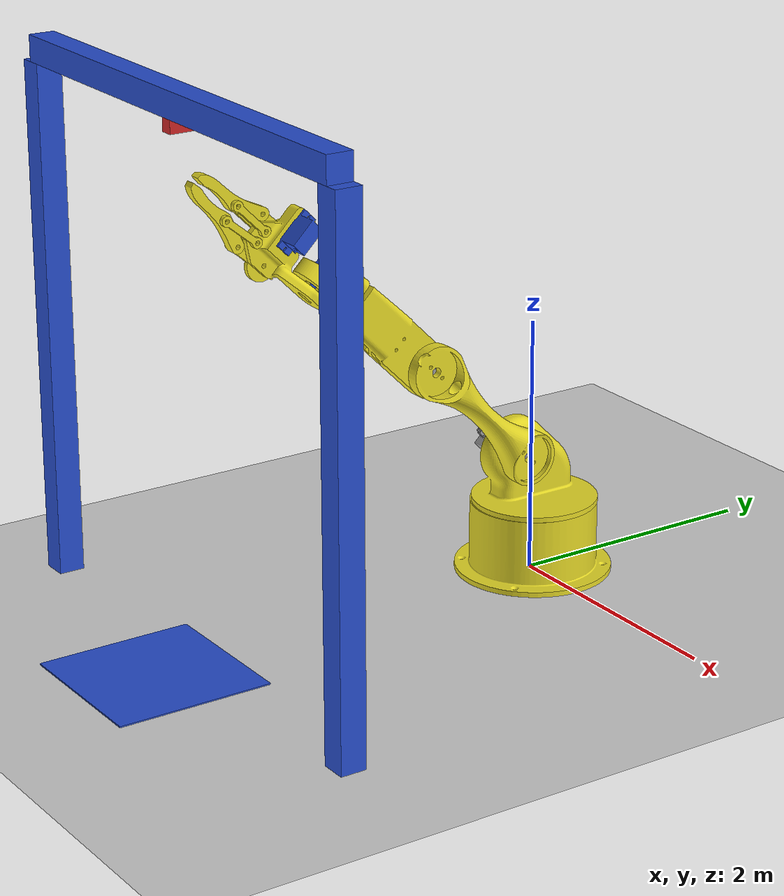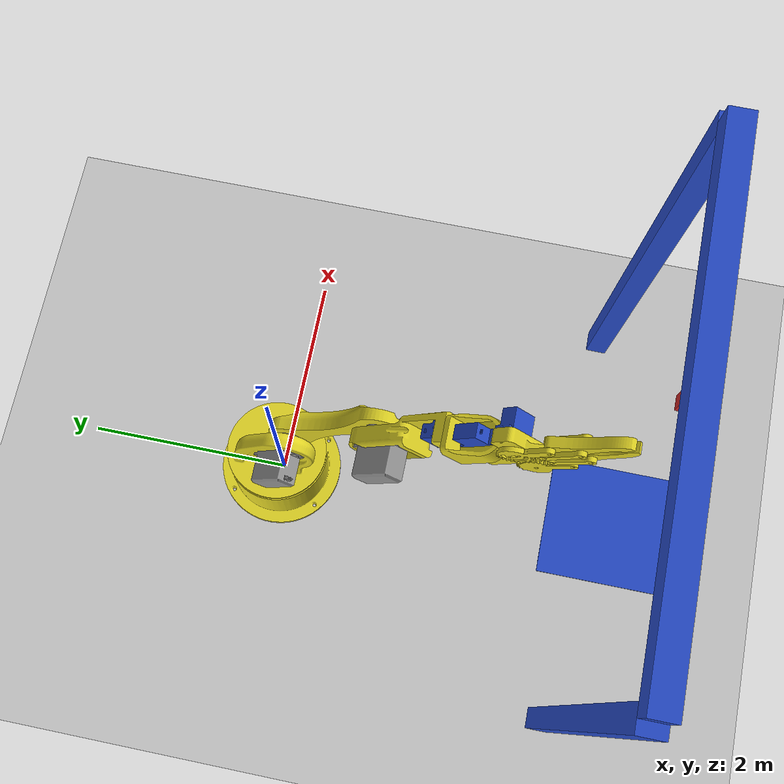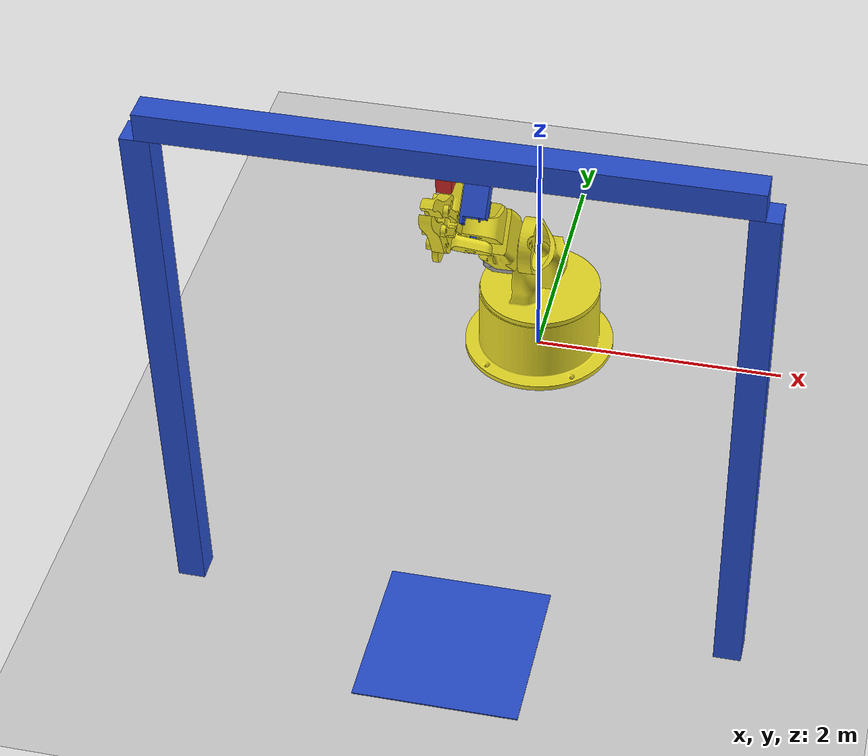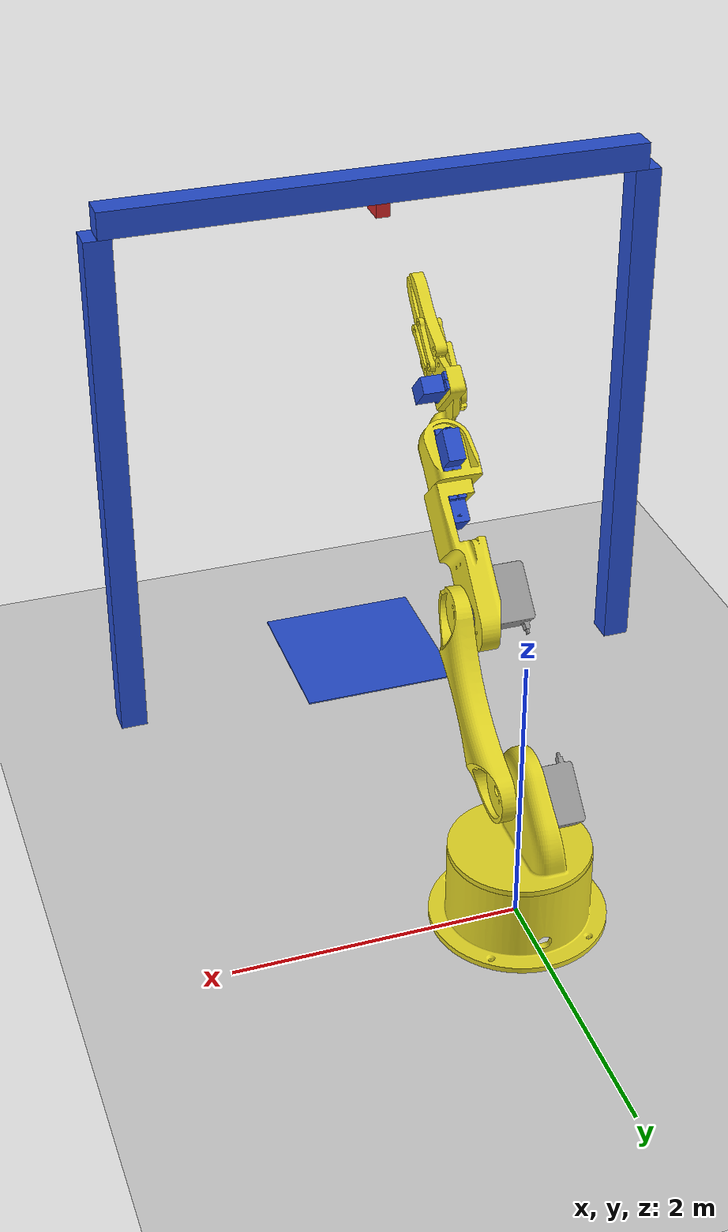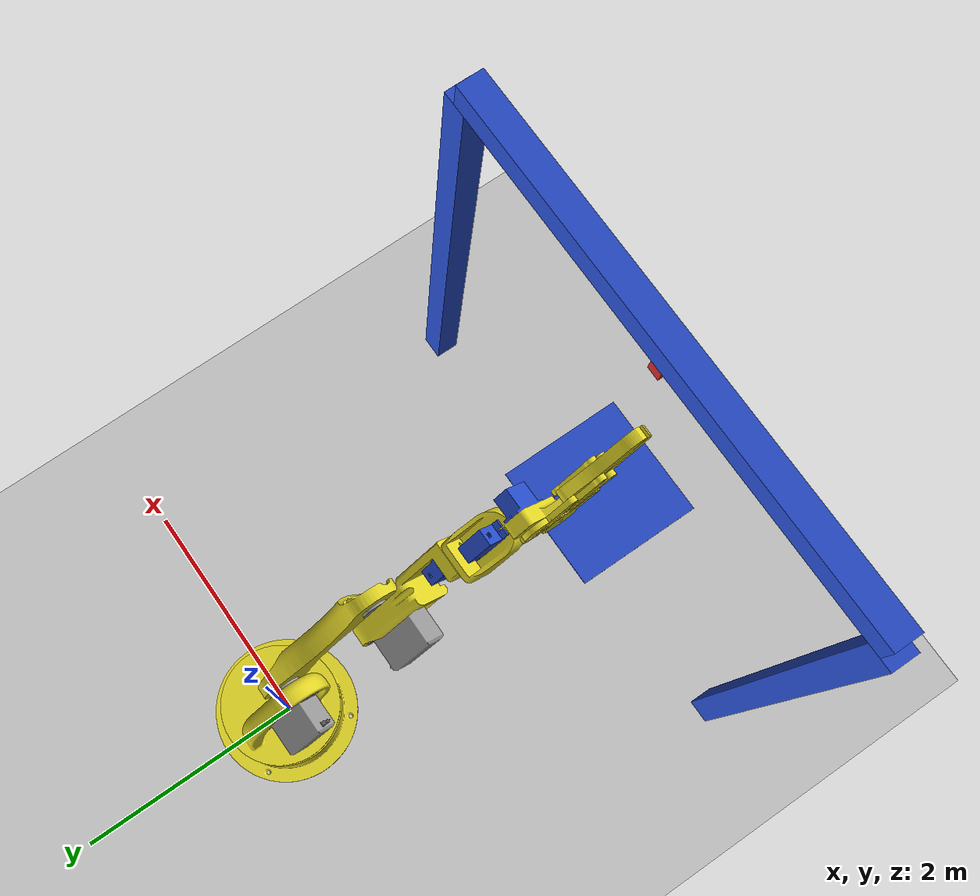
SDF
<sdf version="1.7">
 <world name="default">
  <light name="sun" type="directional">
   <pose>0 0 10 0 -0 0</pose>
   <diffuse>0.8 0.8 0.8 1</diffuse>
   <specular>0.2 0.2 0.2 1</specular>
   <attenuation>
    <range>1000</range>
    <constant>0.9</constant>
    <linear>0.01</linear>
    <quadratic>0.001</quadratic>
   </attenuation>
   <direction>-0.5 0.1 -0.9</direction>
   <spot><inner_angle>0</inner_angle><outer_angle>0</outer_angle><falloff>0</falloff></spot>
  </light>
  <model name="ground_plane">
   <static>1</static>
   <link name="link">
    <collision name="collision">
     <geometry><plane><normal>0 0 1</normal><size>100 100</size></plane></geometry>
     <surface><friction><ode><mu>100</mu><mu2>50</mu2></ode></friction></surface>
    </collision>
    <visual name="visual">
     <cast_shadows>0</cast_shadows>
     <geometry><plane><normal>0 0 1</normal><size>100 100</size></plane></geometry>
     <material>
      <script><uri>file://media/materials/scripts/gazebo.material</uri><name>Gazebo/Grey</name></script>
     </material>
    </visual>
   </link>
  </model>
  <gravity>0 0 -9.8</gravity>
  <magnetic_field>6e-06 2.3e-05 -4.2e-05</magnetic_field>
  <atmosphere type="adiabatic"/>
  <physics type="ode">
   <max_step_size>0.001</max_step_size>
   <real_time_factor>1</real_time_factor>
   <real_time_update_rate>1000</real_time_update_rate>
   <solver><type>quick</type><iters>200</iters><sor>1.3</sor></solver>
   <constraints><cfm>0.0</cfm><erp>0.2</erp></constraints>
  </physics>
  <scene><ambient>0.4 0.4 0.4 1</ambient><background>0.7 0.7 0.7 1</background><shadows>1</shadows></scene>
  <audio><device>default</device></audio>
  <spherical_coordinates>
   <surface_model>EARTH_WGS84</surface_model>
   <latitude_deg>0</latitude_deg>
   <longitude_deg>0</longitude_deg>
   <elevation>0</elevation>
   <heading_deg>0</heading_deg>
  </spherical_coordinates>
  <model name="sort_robotic_arm">
   <link name="ground_link">
    <inertial>
     <pose>0.011375 -1.86413 1.79743 0 -0 0</pose>
     <mass>0.4868</mass>
     <inertia>
      <ixx>2.29682</ixx>
      <ixy>-0.0101959</ixy>
      <ixz>0.00793771</ixz>
      <iyy>2.33883</iyy>
      <iyz>0.823136</iyz>
      <izz>2.36484</izz>
     </inertia>
    </inertial>
    <collision name="ground_link_fixed_joint_lump__base_link_collision">
     <pose>0 0 0.28 0 -0 0</pose>
     <geometry><cylinder><length>0.56</length><radius>0.60625</radius></cylinder></geometry>
    </collision>
    <collision name="ground_link_fixed_joint_lump__servo1_link_collision_1">
     <pose>0.087 -0.0229 0.364 0 -0 0</pose>
     <geometry><box><size>0.558 0.205 0.474</size></box></geometry>
    </collision>
    <collision name="ground_link_fixed_joint_lump__left_tower_link_collision_2">
     <pose>2 -3 2 3.14159 1.57079 3.14159</pose>
     <geometry><box><size>4 0.2 0.2</size></box></geometry>
    </collision>
    <collision name="ground_link_fixed_joint_lump__right_tower_link_collision_3">
     <pose>-2 -3 2 3.14159 1.57079 3.14159</pose>
     <geometry><box><size>4 0.2 0.2</size></box></geometry>
    </collision>
    <collision name="ground_link_fixed_joint_lump__up_tower_link_collision_4">
     <pose>0 -3 4.1 0 -0 0</pose>
     <geometry><box><size>4 0.2 0.2</size></box></geometry>
    </collision>
    <collision name="ground_link_fixed_joint_lump__camera_link_collision_5">
     <pose>0 -3 3.95 1.57159 1.57079 3.14159</pose>
     <geometry><box><size>0.1 0.1 0.2</size></box></geometry>
    </collision>
    <visual name="ground_link_fixed_joint_lump__base_link_visual">
     <pose>-0.60625 0.60625 0 1.57 -0 0</pose>
     <geometry>
      <mesh>
       <scale>0.01 0.01 0.01</scale>
       <uri>model://sort_robotic_arm_description/meshes/Arm_Base/Base.STL</uri>
      </mesh>
     </geometry>
     <material>
      <script><name>Gazebo/Yellow</name><uri>file://media/materials/scripts/gazebo.material</uri></script>
     </material>
    </visual>
    <visual name="ground_link_fixed_joint_lump__servo1_link_visual_1">
     <pose>0.1025 0.1825 0.12 0 -0 3.14</pose>
     <geometry>
      <mesh>
       <scale>0.01 0.01 0.01</scale>
       <uri>model://sort_robotic_arm_description/meshes/Servos/Servo_MG996R.STL</uri>
      </mesh>
     </geometry>
     <material>
      <script><name>Gazebo/Gray</name><uri>file://media/materials/scripts/gazebo.material</uri></script>
     </material>
    </visual>
    <visual name="ground_link_fixed_joint_lump__left_tower_link_visual_2">
     <pose>2 -3 2 3.14159 1.57079 3.14159</pose>
     <geometry><box><size>4 0.2 0.2</size></box></geometry>
     <material>
      <script><name>Gazebo/Blue</name><uri>file://media/materials/scripts/gazebo.material</uri></script>
     </material>
    </visual>
    <visual name="ground_link_fixed_joint_lump__right_tower_link_visual_3">
     <pose>-2 -3 2 3.14159 1.57079 3.14159</pose>
     <geometry><box><size>4 0.2 0.2</size></box></geometry>
     <material>
      <script><name>Gazebo/Blue</name><uri>file://media/materials/scripts/gazebo.material</uri></script>
     </material>
    </visual>
    <visual name="ground_link_fixed_joint_lump__up_tower_link_visual_4">
     <pose>0 -3 4.1 0 -0 0</pose>
     <geometry><box><size>4 0.2 0.2</size></box></geometry>
     <material>
      <script><name>Gazebo/Blue</name><uri>file://media/materials/scripts/gazebo.material</uri></script>
     </material>
    </visual>
    <visual name="ground_link_fixed_joint_lump__camera_link_visual_5">
     <pose>0 -3 3.95 1.57159 1.57079 3.14159</pose>
     <geometry><box><size>0.1 0.1 0.2</size></box></geometry>
     <material>
      <script><name>Gazebo/Red</name><uri>file://media/materials/scripts/gazebo.material</uri></script>
     </material>
    </visual>
    <sensor name="camera" type="camera">
     <visualize>1</visualize>
     <update_rate>5</update_rate>
     <camera>
      <horizontal_fov>1.0856</horizontal_fov>
      <image><width>640</width><height>480</height><format>R8G8B8</format></image>
      <clip><near>0.1</near><far>10</far></clip>
     </camera>
     <plugin name="camera_controller" filename="libgazebo_ros_camera.so">
      <frame_name>camera_optical_frame</frame_name>
     </plugin>
     <pose>0 -3 3.95 3.14159 1.57079 -1.57159</pose>
    </sensor>
   </link>
   <joint name="servo1_waist_joint" type="revolute">
    <pose relative_to="ground_link">0 0 0.56 0 -0 0</pose>
    <parent>ground_link</parent>
    <child>waist_link</child>
    <axis>
     <xyz>0 0 1</xyz>
     <limit><lower>-1e+16</lower><upper>1e+16</upper></limit>
     <dynamics><spring_reference>0</spring_reference><spring_stiffness>0</spring_stiffness></dynamics>
    </axis>
   </joint>
   <link name="waist_link">
    <pose relative_to="servo1_waist_joint">0 0 0 0 -0 0</pose>
    <inertial>
     <pose>-0.085569 -0.042339 0.150536 0 -0 0</pose>
     <mass>0.16067</mass>
     <inertia>
      <ixx>0.104657</ixx>
      <ixy>-0.000887275</ixy>
      <ixz>-0.00152183</ixz>
      <iyy>0.0136117</iyy>
      <iyz>-0.00726861</iyz>
      <izz>0.0822322</izz>
     </inertia>
    </inertial>
    <collision name="waist_link_collision">
     <pose>0 0 0.08 0 -0 0</pose>
     <geometry><cylinder><length>0.16</length><radius>0.485</radius></cylinder></geometry>
    </collision>
    <collision name="waist_link_fixed_joint_lump__servo2_link_collision_1">
     <pose>-0.216 -0.106876 0.258051 0.785 -0 0</pose>
     <geometry><box><size>0.558 0.205 0.474</size></box></geometry>
    </collision>
    <visual name="waist_link_visual">
     <pose>-0.485 -0.485 0 0 -0 0</pose>
     <geometry>
      <mesh>
       <scale>0.01 0.01 0.01</scale>
       <uri>model://sort_robotic_arm_description/meshes/Arm_Base/Waist.STL</uri>
      </mesh>
     </geometry>
     <material>
      <script><name>Gazebo/Yellow</name><uri>file://media/materials/scripts/gazebo.material</uri></script>
     </material>
    </visual>
    <visual name="waist_link_fixed_joint_lump__servo2_link_visual_1">
     <pose>-0.41 -0.186347 0.593754 -1.57 0.785796 -1.56967</pose>
     <geometry>
      <mesh>
       <scale>0.01 0.01 0.01</scale>
       <uri>model://sort_robotic_arm_description/meshes/Servos/Servo_MG996R.STL</uri>
      </mesh>
     </geometry>
     <material>
      <script><name>Gazebo/Gray</name><uri>file://media/materials/scripts/gazebo.material</uri></script>
     </material>
    </visual>
   </link>
   <joint name="servo2_arm1_joint" type="revolute">
    <pose relative_to="waist_link">0.068 -0.138396 0.392743 -1.57 -0.785796 1.56967</pose>
    <parent>waist_link</parent>
    <child>arm1_link</child>
    <axis>
     <xyz>0 0 1</xyz>
     <limit><lower>-1e+16</lower><upper>1e+16</upper></limit>
     <dynamics><spring_reference>0</spring_reference><spring_stiffness>0</spring_stiffness></dynamics>
    </axis>
   </joint>
   <link name="arm1_link">
    <pose relative_to="servo2_arm1_joint">0 0 0 0 -0 0</pose>
    <inertial>
     <pose>0.025 -0.63 -0.05 1.57 -0 0</pose>
     <mass>0.05231</mass>
     <inertia><ixx>0.01</ixx><ixy>0</ixy><ixz>0</ixz><iyy>6e-05</iyy><iyz>0</iyz><izz>0.01</izz></inertia>
    </inertial>
    <collision name="arm1_link_collision">
     <pose>0.025 -0.63 -0.05 1.57 -0 0</pose>
     <geometry><cylinder><length>1.62</length><radius>0.21</radius></cylinder></geometry>
    </collision>
    <visual name="arm1_link_visual">
     <pose>0.3125 0.21 -0.23 0 0 -3.14</pose>
     <geometry>
      <mesh>
       <scale>0.01 0.01 0.01</scale>
       <uri>model://sort_robotic_arm_description/meshes/Arm_Base/Arm1.STL</uri>
      </mesh>
     </geometry>
     <material>
      <script><name>Gazebo/Yellow</name><uri>file://media/materials/scripts/gazebo.material</uri></script>
     </material>
    </visual>
   </link>
   <joint name="arm1_servo3_joint" type="revolute">
    <pose relative_to="arm1_link">0 -1.2 0 0 -0 0</pose>
    <parent>arm1_link</parent>
    <child>servo3_link</child>
    <axis>
     <xyz>0 0 1</xyz>
     <limit><lower>-1e+16</lower><upper>1e+16</upper></limit>
     <dynamics><spring_reference>0</spring_reference><spring_stiffness>0</spring_stiffness></dynamics>
    </axis>
   </joint>
   <link name="servo3_link">
    <pose relative_to="arm1_servo3_joint">0 0 0 0 -0 0</pose>
    <inertial>
     <pose>-0 -0.195596 0.182399 0 -0 1.57</pose>
     <mass>0.12811</mass>
     <inertia>
      <ixx>0.0184931</ixx>
      <ixy>-2.10122e-06</ixy>
      <ixz>-0.000549903</ixz>
      <iyy>0.0131317</iyy>
      <iyz>-4.37902e-07</iyz>
      <izz>0.0127816</izz>
     </inertia>
    </inertial>
    <collision name="servo3_link_collision">
     <pose>0 -0.1 0.237 0 -0 1.57</pose>
     <geometry><box><size>0.558 0.205 0.474</size></box></geometry>
    </collision>
    <collision name="servo3_link_fixed_joint_lump__arm2_link_collision_1">
     <pose>0 -0.349785 0.135557 3.14 -0 0</pose>
     <geometry><box><size>0.38 1.15 0.27</size></box></geometry>
    </collision>
    <collision name="servo3_link_fixed_joint_lump__micro_servo1_link_collision_2">
     <pose>-8e-05 -0.049841 0.100079 1.57159 -0.000796 -1.5708</pose>
     <geometry><box><size>0.326 0.124 0.299</size></box></geometry>
    </collision>
    <visual name="servo3_link_visual">
     <pose>-0.1025 0.1825 0.474 3.14 -0 0</pose>
     <geometry>
      <mesh>
       <scale>0.01 0.01 0.01</scale>
       <uri>model://sort_robotic_arm_description/meshes/Servos/Servo_MG996R.STL</uri>
      </mesh>
     </geometry>
     <material>
      <script><name>Gazebo/Gray</name><uri>file://media/materials/scripts/gazebo.material</uri></script>
     </material>
    </visual>
    <visual name="servo3_link_fixed_joint_lump__arm2_link_visual_1">
     <pose>-0.19 0.252885 0.241598 3.14 -0 0</pose>
     <geometry>
      <mesh>
       <scale>0.01 0.01 0.01</scale>
       <uri>model://sort_robotic_arm_description/meshes/Arm_Base/Arm2.STL</uri>
      </mesh>
     </geometry>
     <material>
      <script><name>Gazebo/Yellow</name><uri>file://media/materials/scripts/gazebo.material</uri></script>
     </material>
    </visual>
    <visual name="servo3_link_fixed_joint_lump__micro_servo1_link_visual_2">
     <pose>0.119908 -0.664316 0.116154 -1.5692 1.57079 -3.14159</pose>
     <geometry>
      <mesh>
       <scale>0.01 0.01 0.01</scale>
       <uri>model://sort_robotic_arm_description/meshes/Servos/Micro_Servo.STL</uri>
      </mesh>
     </geometry>
     <material>
      <script><name>Gazebo/Blue</name><uri>file://media/materials/scripts/gazebo.material</uri></script>
     </material>
    </visual>
   </link>
   <joint name="micro_servo1_arm3_joint" type="revolute">
    <pose relative_to="servo3_link">0.049908 -0.922316 0.116509 0.001593 0.001593 -3.14159</pose>
    <parent>servo3_link</parent>
    <child>arm3_link</child>
    <axis>
     <xyz>0 1 0</xyz>
     <limit><lower>-1e+16</lower><upper>1e+16</upper></limit>
     <dynamics><spring_reference>0</spring_reference><spring_stiffness>0</spring_stiffness></dynamics>
    </axis>
   </joint>
   <link name="arm3_link">
    <pose relative_to="micro_servo1_arm3_joint">0 0 0 0 -0 0</pose>
    <inertial>
     <pose>0 0.206915 0 -1.57 0 0</pose>
     <mass>0.03345</mass>
     <inertia>
      <ixx>0.000145564</ixx>
      <ixy>-4.24871e-11</ixy>
      <ixz>6.94665e-06</ixz>
      <iyy>0.000132564</iyy>
      <iyz>-5.53956e-08</iyz>
      <izz>4.50001e-05</izz>
     </inertia>
    </inertial>
    <collision name="arm3_link_collision">
     <pose>0 0.2 0 -1.57 0 0</pose>
     <geometry><box><size>0.28 0.33 0.46</size></box></geometry>
    </collision>
    <collision name="arm3_link_fixed_joint_lump__micro_servo2_link_collision_1">
     <pose>0 0.218 0 1.57 -0 1.57</pose>
     <geometry><box><size>0.326 0.124 0.299</size></box></geometry>
    </collision>
    <visual name="arm3_link_visual">
     <pose>-0.14 0 0.215 -1.57 0 0</pose>
     <geometry>
      <mesh>
       <scale>0.01 0.01 0.01</scale>
       <uri>model://sort_robotic_arm_description/meshes/Arm_Base/Arm3.STL</uri>
      </mesh>
     </geometry>
     <material>
      <script><name>Gazebo/Yellow</name><uri>file://media/materials/scripts/gazebo.material</uri></script>
     </material>
    </visual>
    <visual name="arm3_link_fixed_joint_lump__micro_servo2_link_visual_1">
     <pose>-0.098 0.34 0.055 3.14159 1.57079 3.14159</pose>
     <geometry>
      <mesh>
       <scale>0.01 0.01 0.01</scale>
       <uri>model://sort_robotic_arm_description/meshes/Servos/Micro_Servo.STL</uri>
      </mesh>
     </geometry>
     <material>
      <script><name>Gazebo/Blue</name><uri>file://media/materials/scripts/gazebo.material</uri></script>
     </material>
    </visual>
   </link>
   <joint name="micro_servo2_gripper_base_joint" type="revolute">
    <pose relative_to="arm3_link">0.165 0.28 0.05 0.001593 -0.001593 3.14159</pose>
    <parent>arm3_link</parent>
    <child>gripper_base_link</child>
    <axis>
     <xyz>1 0 0</xyz>
     <limit><lower>-1e+16</lower><upper>1e+16</upper></limit>
     <dynamics><spring_reference>0</spring_reference><spring_stiffness>0</spring_stiffness></dynamics>
    </axis>
   </joint>
   <link name="gripper_base_link">
    <pose relative_to="micro_servo2_gripper_base_joint">0 0 0 0 -0 0</pose>
    <inertial>
     <pose>0.148902 -0.317617 0 0 -0 0</pose>
     <mass>0.03416</mass>
     <inertia>
      <ixx>0.000183162</ixx>
      <ixy>0.000129211</ixy>
      <ixz>5.5e-06</ixz>
      <iyy>0.000265474</iyy>
      <iyz>1.6e-05</iyz>
      <izz>0.000415636</izz>
     </inertia>
    </inertial>
    <collision name="gripper_base_link_collision">
     <pose>0.1 -0.28 0 0 -0 0</pose>
     <geometry><box><size>0.533 0.77 0.24</size></box></geometry>
    </collision>
    <collision name="gripper_base_link_fixed_joint_lump__micro_servo3_link_collision_1">
     <pose>0.23 -0.38 0 0 -0 0</pose>
     <geometry><box><size>0.326 0.124 0.299</size></box></geometry>
    </collision>
    <visual name="gripper_base_link_visual">
     <pose>-0.14 -0.63 -0.14 0 -0 0</pose>
     <geometry>
      <mesh>
       <scale>0.01 0.01 0.01</scale>
       <uri>model://sort_robotic_arm_description/meshes/Arm_Gripper/Gripper_Base.STL</uri>
      </mesh>
     </geometry>
     <material>
      <script><name>Gazebo/Yellow</name><uri>file://media/materials/scripts/gazebo.material</uri></script>
     </material>
    </visual>
    <visual name="gripper_base_link_fixed_joint_lump__micro_servo3_link_visual_1">
     <pose>0.117 -0.38 -0.1037 0 -0 1.57</pose>
     <geometry>
      <mesh>
       <scale>0.01 0.01 0.01</scale>
       <uri>model://sort_robotic_arm_description/meshes/Servos/Micro_Servo.STL</uri>
      </mesh>
     </geometry>
     <material>
      <script><name>Gazebo/Blue</name><uri>file://media/materials/scripts/gazebo.material</uri></script>
     </material>
    </visual>
   </link>
   <joint name="gripper_base_down_left_gripper_link_joint" type="revolute">
    <pose relative_to="gripper_base_link">-0.01 -0.58 0.02 0 0 -0.1</pose>
    <parent>gripper_base_link</parent>
    <child>down_left_gripper_link_link</child>
    <axis>
     <xyz>0 0 -1</xyz>
     <limit><lower>-1e+16</lower><upper>1e+16</upper></limit>
     <dynamics><spring_reference>0</spring_reference><spring_stiffness>0</spring_stiffness></dynamics>
    </axis>
   </joint>
   <link name="down_left_gripper_link_link">
    <pose relative_to="gripper_base_down_left_gripper_link_joint">0 0 0 0 -0 0</pose>
    <inertial>
     <pose>0 -0.15 0 0 -0 0</pose>
     <mass>0.001</mass>
     <inertia><ixx>1.3e-06</ixx><ixy>0</ixy><ixz>0</ixz><iyy>4.5e-08</iyy><iyz>0</iyz><izz>1.3e-06</izz></inertia>
    </inertial>
    <collision name="down_left_gripper_link_link_collision">
     <pose>0 -0.15 0 0 -0 0</pose>
     <geometry><box><size>0.08 0.4 0.04</size></box></geometry>
    </collision>
    <visual name="down_left_gripper_link_link_visual">
     <pose>0.04 0.04 0 0 -0 3.14</pose>
     <geometry>
      <mesh>
       <scale>0.01 0.01 0.01</scale>
       <uri>model://sort_robotic_arm_description/meshes/Arm_Gripper/Gripper_Link.STL</uri>
      </mesh>
     </geometry>
     <material>
      <script><name>Gazebo/Yellow</name><uri>file://media/materials/scripts/gazebo.material</uri></script>
     </material>
    </visual>
   </link>
   <joint name="gripper_base_down_right_gripper_link_joint" type="revolute">
    <pose relative_to="gripper_base_link">0.09 -0.58 0.02 0 -0 0</pose>
    <parent>gripper_base_link</parent>
    <child>down_right_gripper_link_link</child>
    <axis>
     <xyz>0 0 1</xyz>
     <limit><lower>-1e+16</lower><upper>1e+16</upper></limit>
     <dynamics><spring_reference>0</spring_reference><spring_stiffness>0</spring_stiffness></dynamics>
    </axis>
   </joint>
   <link name="down_right_gripper_link_link">
    <pose relative_to="gripper_base_down_right_gripper_link_joint">0 0 0 0 -0 0</pose>
    <inertial>
     <pose>0 -0.15 0 0 -0 0</pose>
     <mass>0.001</mass>
     <inertia><ixx>1.3e-06</ixx><ixy>0</ixy><ixz>0</ixz><iyy>4.5e-08</iyy><iyz>0</iyz><izz>1.3e-06</izz></inertia>
    </inertial>
    <collision name="down_right_gripper_link_link_collision">
     <pose>0 -0.15 0 0 -0 0</pose>
     <geometry><box><size>0.08 0.4 0.04</size></box></geometry>
    </collision>
    <visual name="down_right_gripper_link_link_visual">
     <pose>0.04 0.04 0 0 -0 3.14</pose>
     <geometry>
      <mesh>
       <scale>0.01 0.01 0.01</scale>
       <uri>model://sort_robotic_arm_description/meshes/Arm_Gripper/Gripper_Link.STL</uri>
      </mesh>
     </geometry>
     <material>
      <script><name>Gazebo/Yellow</name><uri>file://media/materials/scripts/gazebo.material</uri></script>
     </material>
    </visual>
   </link>
   <joint name="gripper_base_gear1_joint" type="revolute">
    <pose relative_to="gripper_base_link">-0.09 -0.36 0.14 0 -0 3.05</pose>
    <parent>gripper_base_link</parent>
    <child>gear1_link</child>
    <axis>
     <xyz>0 0 -1</xyz>
     <limit><lower>-1e+16</lower><upper>1e+16</upper></limit>
     <dynamics><spring_reference>0</spring_reference><spring_stiffness>0</spring_stiffness></dynamics>
    </axis>
   </joint>
   <link name="gear1_link">
    <pose relative_to="gripper_base_gear1_joint">0 0 0 0 -0 0</pose>
    <inertial>
     <pose>-0.01 0 0 0 -0 0</pose>
     <mass>0.00332</mass>
     <inertia><ixx>5e-05</ixx><ixy>0</ixy><ixz>0</ixz><iyy>0.0001</iyy><iyz>0</iyz><izz>4.6e-05</izz></inertia>
    </inertial>
    <collision name="gear1_link_collision">
     <pose>-0.01 0 0 0 -0 0</pose>
     <geometry><cylinder><length>0.04</length><radius>0.133</radius></cylinder></geometry>
    </collision>
    <visual name="gear1_link_visual">
     <pose>0.1209 -0.1463 0 3.14159 -1.57079 3.14159</pose>
     <geometry>
      <mesh>
       <scale>0.01 0.01 0.01</scale>
       <uri>model://sort_robotic_arm_description/meshes/Arm_Gripper/Gear1.STL</uri>
      </mesh>
     </geometry>
     <material>
      <script><name>Gazebo/Yellow</name><uri>file://media/materials/scripts/gazebo.material</uri></script>
     </material>
    </visual>
   </link>
   <joint name="gear1_left_gripper_joint" type="revolute">
    <pose relative_to="gear1_link">0 0.3075 0 0 -0 0.45</pose>
    <parent>gear1_link</parent>
    <child>left_gripper_link</child>
    <axis>
     <xyz>0 0 1</xyz>
     <limit><lower>-1e+16</lower><upper>1e+16</upper></limit>
     <dynamics><spring_reference>0</spring_reference><spring_stiffness>0</spring_stiffness></dynamics>
    </axis>
   </joint>
   <link name="left_gripper_link">
    <pose relative_to="gear1_left_gripper_joint">0 0 0 0 -0 0</pose>
    <inertial>
     <pose>0 0.28 0 3.14159 0.001593 3.14159</pose>
     <mass>0.00589</mass>
     <inertia><ixx>1.8e-05</ixx><ixy>0</ixy><ixz>0</ixz><iyy>1.6e-06</iyy><iyz>0</iyz><izz>1.9e-05</izz></inertia>
    </inertial>
    <collision name="left_gripper_link_collision">
     <pose>0.153 -0.05 0 3.14159 0.001593 3.14159</pose>
     <geometry>
      <mesh>
       <scale>0.01 0.01 0.01</scale>
       <uri>model://sort_robotic_arm_description/meshes/Arm_Gripper/Gripper.STL</uri>
      </mesh>
     </geometry>
    </collision>
    <visual name="left_gripper_link_visual">
     <pose>0.153 -0.05 0 3.14159 0.001593 3.14159</pose>
     <geometry>
      <mesh>
       <scale>0.01 0.01 0.01</scale>
       <uri>model://sort_robotic_arm_description/meshes/Arm_Gripper/Gripper.STL</uri>
      </mesh>
     </geometry>
     <material>
      <script><name>Gazebo/Yellow</name><uri>file://media/materials/scripts/gazebo.material</uri></script>
     </material>
    </visual>
   </link>
   <joint name="micro_servo3_gear2_joint" type="revolute">
    <pose relative_to="gripper_base_link">0.179 -0.36 0.14 0 -0 0</pose>
    <parent>gripper_base_link</parent>
    <child>gear2_link</child>
    <axis>
     <xyz>0 0 1</xyz>
     <limit><lower>0.1</lower><upper>1.3</upper><effort>10</effort><velocity>1</velocity></limit>
     <dynamics><spring_reference>0</spring_reference><spring_stiffness>0</spring_stiffness></dynamics>
    </axis>
   </joint>
   <link name="gear2_link">
    <pose relative_to="micro_servo3_gear2_joint">0 0 0 0 -0 0</pose>
    <inertial>
     <pose>-0.01 0 0 0 -0 0</pose>
     <mass>0.00277</mass>
     <inertia><ixx>5e-05</ixx><ixy>0</ixy><ixz>0</ixz><iyy>0.0001</iyy><iyz>0</iyz><izz>4.6e-05</izz></inertia>
    </inertial>
    <collision name="gear2_link_collision">
     <pose>-0.01 0 0 0 -0 0</pose>
     <geometry><cylinder><length>0.04</length><radius>0.133</radius></cylinder></geometry>
    </collision>
    <visual name="gear2_link_visual">
     <pose>0.1209 -0.3475 0 3.14159 -1.57079 3.14159</pose>
     <geometry>
      <mesh>
       <scale>0.01 0.01 0.01</scale>
       <uri>model://sort_robotic_arm_description/meshes/Arm_Gripper/Gear2.STL</uri>
      </mesh>
     </geometry>
     <material>
      <script><name>Gazebo/Yellow</name><uri>file://media/materials/scripts/gazebo.material</uri></script>
     </material>
    </visual>
   </link>
   <joint name="gear2_right_gripper_joint" type="revolute">
    <pose relative_to="gear2_link">0 -0.3075 0 0 -0 2.78319</pose>
    <parent>gear2_link</parent>
    <child>right_gripper_link</child>
    <axis>
     <xyz>0 0 -1</xyz>
     <limit><lower>-1e+16</lower><upper>1e+16</upper></limit>
     <dynamics><spring_reference>0</spring_reference><spring_stiffness>0</spring_stiffness></dynamics>
    </axis>
   </joint>
   <link name="right_gripper_link">
    <pose relative_to="gear2_right_gripper_joint">0 0 0 0 -0 0</pose>
    <inertial>
     <pose>0 0.28 0 0 -0 0</pose>
     <mass>0.00589</mass>
     <inertia><ixx>1.8e-05</ixx><ixy>0</ixy><ixz>0</ixz><iyy>1.6e-06</iyy><iyz>0</iyz><izz>1.9e-05</izz></inertia>
    </inertial>
    <collision name="right_gripper_link_collision">
     <pose>-0.1462 -0.05 -0.085 0 -0 0</pose>
     <geometry>
      <mesh>
       <scale>0.01 0.01 0.01</scale>
       <uri>model://sort_robotic_arm_description/meshes/Arm_Gripper/Gripper.STL</uri>
      </mesh>
     </geometry>
    </collision>
    <visual name="right_gripper_link_visual">
     <pose>-0.1462 -0.05 -0.085 0 -0 0</pose>
     <geometry>
      <mesh>
       <scale>0.01 0.01 0.01</scale>
       <uri>model://sort_robotic_arm_description/meshes/Arm_Gripper/Gripper.STL</uri>
      </mesh>
     </geometry>
     <material>
      <script><name>Gazebo/Yellow</name><uri>file://media/materials/scripts/gazebo.material</uri></script>
     </material>
    </visual>
   </link>
   <joint name="gripper_base_up_left_gripper_link_joint" type="revolute">
    <pose relative_to="gripper_base_link">-0.01 -0.56 0.14 0 0 -0.1</pose>
    <parent>gripper_base_link</parent>
    <child>up_left_gripper_link_link</child>
    <axis>
     <xyz>0 0 -1</xyz>
     <limit><lower>-1e+16</lower><upper>1e+16</upper></limit>
     <dynamics><spring_reference>0</spring_reference><spring_stiffness>0</spring_stiffness></dynamics>
    </axis>
   </joint>
   <link name="up_left_gripper_link_link">
    <pose relative_to="gripper_base_up_left_gripper_link_joint">0 0 0 0 -0 0</pose>
    <inertial>
     <pose>0 -0.15 0 0 -0 0</pose>
     <mass>0.001</mass>
     <inertia><ixx>1.3e-06</ixx><ixy>0</ixy><ixz>0</ixz><iyy>4.5e-08</iyy><iyz>0</iyz><izz>1.3e-06</izz></inertia>
    </inertial>
    <collision name="up_left_gripper_link_link_collision">
     <pose>0 -0.15 0 0 -0 0</pose>
     <geometry><box><size>0.08 0.4 0.04</size></box></geometry>
    </collision>
    <visual name="up_left_gripper_link_link_visual">
     <pose>0.04 0.04 0 0 -0 3.14</pose>
     <geometry>
      <mesh>
       <scale>0.01 0.01 0.01</scale>
       <uri>model://sort_robotic_arm_description/meshes/Arm_Gripper/Gripper_Link.STL</uri>
      </mesh>
     </geometry>
     <material>
      <script><name>Gazebo/Yellow</name><uri>file://media/materials/scripts/gazebo.material</uri></script>
     </material>
    </visual>
   </link>
   <joint name="gripper_base_up_right_gripper_link_joint" type="revolute">
    <pose relative_to="gripper_base_link">0.09 -0.56 0.14 0 -0 0</pose>
    <parent>gripper_base_link</parent>
    <child>up_right_gripper_link_link</child>
    <axis>
     <xyz>0 0 1</xyz>
     <limit><lower>-1e+16</lower><upper>1e+16</upper></limit>
     <dynamics><spring_reference>0</spring_reference><spring_stiffness>0</spring_stiffness></dynamics>
    </axis>
   </joint>
   <link name="up_right_gripper_link_link">
    <pose relative_to="gripper_base_up_right_gripper_link_joint">0 0 0 0 -0 0</pose>
    <inertial>
     <pose>0 -0.15 0.02 0 -0 0</pose>
     <mass>0.001</mass>
     <inertia><ixx>1.3e-06</ixx><ixy>0</ixy><ixz>0</ixz><iyy>4.5e-08</iyy><iyz>0</iyz><izz>1.3e-06</izz></inertia>
    </inertial>
    <collision name="up_right_gripper_link_link_collision">
     <pose>0 -0.15 0.02 0 -0 0</pose>
     <geometry><box><size>0.08 0.4 0.04</size></box></geometry>
    </collision>
    <visual name="up_right_gripper_link_link_visual">
     <pose>0.04 0.04 0 0 -0 3.14</pose>
     <geometry>
      <mesh>
       <scale>0.01 0.01 0.01</scale>
       <uri>model://sort_robotic_arm_description/meshes/Arm_Gripper/Gripper_Link.STL</uri>
      </mesh>
     </geometry>
     <material>
      <script><name>Gazebo/Yellow</name><uri>file://media/materials/scripts/gazebo.material</uri></script>
     </material>
    </visual>
   </link>
   <static>0</static>
   <plugin name="gazebo_ros2_control" filename="libgazebo_ros2_control.so">
    <parameters>/home/daniel/ros2_ws/install/sort_robotic_arm_description/share/sort_robotic_arm_description/yaml/config_yaml.yaml</parameters>
   </plugin>
   <pose>0.001181 0.025712 0 -0 -0 -0.000258</pose>
  </model>
  <model name="measure_cube">
   <link name="link_0">
    <inertial>
     <mass>1</mass>
     <inertia>
      <ixx>0.166667</ixx>
      <ixy>0</ixy>
      <ixz>0</ixz>
      <iyy>0.166667</iyy>
      <iyz>0</iyz>
      <izz>0.166667</izz>
     </inertia>
     <pose>0 -1 0 0 -0 0</pose>
    </inertial>
    <pose>0 -1 0 0 -0 0</pose>
    <visual name="visual">
     <pose>0 -1 -0.5 0 -0 0</pose>
     <geometry><box><size>1.2 1.2 0.01</size></box></geometry>
     <material>
      <lighting>1</lighting>
      <script><uri>file://media/materials/scripts/gazebo.material</uri><name>Gazebo/Blue</name></script>
      <shader type="pixel"><normal_map>__default__</normal_map></shader>
      <ambient>0 0 1 1</ambient>
      <diffuse>0 0 1 1</diffuse>
      <specular>0.01 0.01 0.01 1</specular>
      <emissive>0 0 0 1</emissive>
     </material>
    </visual>
    <collision name="collision">
     <pose>0 -1 -0.5 0 -0 0</pose>
     <geometry><box><size>1.2 1.2 0.01</size></box></geometry>
     <surface>
      <friction>
       <ode><mu>1</mu><mu2>1</mu2><fdir1>0 0 0</fdir1><slip1>0</slip1><slip2>0</slip2></ode>
       <torsional>
        <coefficient>1</coefficient>
        <patch_radius>0</patch_radius>
        <surface_radius>0</surface_radius>
        <use_patch_radius>1</use_patch_radius>
        <ode><slip>0</slip></ode>
       </torsional>
      </friction>
      <bounce><restitution_coefficient>0</restitution_coefficient><threshold>1e+06</threshold></bounce>
      <contact>
       <collide_without_contact>0</collide_without_contact>
       <collide_without_contact_bitmask>1</collide_without_contact_bitmask>
       <collide_bitmask>1</collide_bitmask>
       <ode>
        <soft_cfm>0</soft_cfm>
        <soft_erp>0.2</soft_erp>
        <kp>1e+13</kp>
        <kd>1</kd>
        <max_vel>0.01</max_vel>
        <min_depth>0</min_depth>
       </ode>
       <bullet>
        <split_impulse>1</split_impulse>
        <split_impulse_penetration_threshold>-0.01</split_impulse_penetration_threshold>
        <soft_cfm>0</soft_cfm>
        <soft_erp>0.2</soft_erp>
        <kp>1e+13</kp>
        <kd>1</kd>
       </bullet>
      </contact>
     </surface>
    </collision>
   </link>
   <static>0</static>
   <pose>0.046434 -1.33265 0.5 0 -0 0</pose>
  </model>
 </world>
</sdf>
